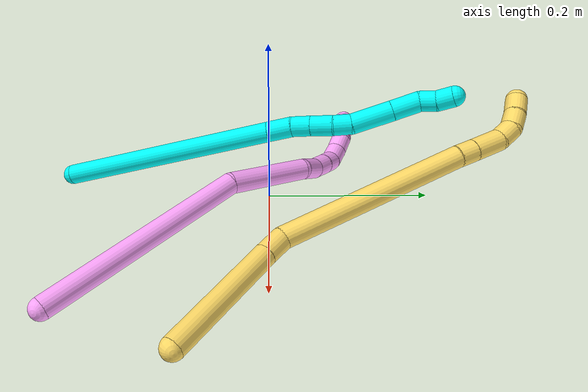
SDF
<sdf version="1.7">
 <world name="default">
  <model name="3">
   <static>0</static>
   <link name="3">
    <collision name="collision-cylinder-e_1_1_4">
     <pose>0.006702 0.009259 -0.135247 -3.07324 0.049395 -1.25138</pose>
     <geometry><cylinder><radius>0.0125</radius><length>0.271458</length></cylinder></geometry>
     <surface>
      <friction><ode><mu>1.16</mu><mu2>1.16</mu2><slip1>0</slip1><slip2>0</slip2></ode></friction>
      <contact><ode><kp>1e+06</kp><kd>1</kd><max_vel>0</max_vel><min_depth>0.001</min_depth></ode></contact>
     </surface>
    </collision>
    <visual name="visual-cylinder-e_1_1_4">
     <pose>0.006702 0.009259 -0.135247 -3.07324 0.049395 -1.25138</pose>
     <geometry><cylinder><radius>0.0125</radius><length>0.271458</length></cylinder></geometry>
     <material><ambient>0.003922 1 0.996078 1</ambient></material>
    </visual>
    <collision name="collision-cylinder-e_2_4_5">
     <pose>0.014075 0.019547 -0.285481 -3.07299 0.04471 -1.15496</pose>
     <geometry><cylinder><radius>0.0125</radius><length>0.030076</length></cylinder></geometry>
     <surface>
      <friction><ode><mu>1.16</mu><mu2>1.16</mu2><slip1>0</slip1><slip2>0</slip2></ode></friction>
      <contact><ode><kp>1e+06</kp><kd>1</kd><max_vel>0</max_vel><min_depth>0.001</min_depth></ode></contact>
     </surface>
    </collision>
    <visual name="visual-cylinder-e_2_4_5">
     <pose>0.014075 0.019547 -0.285481 -3.07299 0.04471 -1.15496</pose>
     <geometry><cylinder><radius>0.0125</radius><length>0.030076</length></cylinder></geometry>
     <material><ambient>0.003922 1 0.996078 1</ambient></material>
    </visual>
    <collision name="collision-cylinder-e_3_5_6">
     <pose>0.01336 0.021485 -0.312041 -3.06327 -0.118963 1.97774</pose>
     <geometry><cylinder><radius>0.0125</radius><length>0.02338</length></cylinder></geometry>
     <surface>
      <friction><ode><mu>1.16</mu><mu2>1.16</mu2><slip1>0</slip1><slip2>0</slip2></ode></friction>
      <contact><ode><kp>1e+06</kp><kd>1</kd><max_vel>0</max_vel><min_depth>0.001</min_depth></ode></contact>
     </surface>
    </collision>
    <visual name="visual-cylinder-e_3_5_6">
     <pose>0.01336 0.021485 -0.312041 -3.06327 -0.118963 1.97774</pose>
     <geometry><cylinder><radius>0.0125</radius><length>0.02338</length></cylinder></geometry>
     <material><ambient>0.003922 1 0.996078 1</ambient></material>
    </visual>
    <collision name="collision-cylinder-e_4_6_7">
     <pose>0.010038 0.023231 -0.336959 -3.0789 -0.143687 2.31985</pose>
     <geometry><cylinder><radius>0.0125</radius><length>0.027025</length></cylinder></geometry>
     <surface>
      <friction><ode><mu>1.16</mu><mu2>1.16</mu2><slip1>0</slip1><slip2>0</slip2></ode></friction>
      <contact><ode><kp>1e+06</kp><kd>1</kd><max_vel>0</max_vel><min_depth>0.001</min_depth></ode></contact>
     </surface>
    </collision>
    <visual name="visual-cylinder-e_4_6_7">
     <pose>0.010038 0.023231 -0.336959 -3.0789 -0.143687 2.31985</pose>
     <geometry><cylinder><radius>0.0125</radius><length>0.027025</length></cylinder></geometry>
     <material><ambient>0.003922 1 0.996078 1</ambient></material>
    </visual>
    <collision name="collision-cylinder-e_5_7_8">
     <pose>0.00718 0.026357 -0.361125 -2.93321 -0.083283 0.758316</pose>
     <geometry><cylinder><radius>0.0125</radius><length>0.022194</length></cylinder></geometry>
     <surface>
      <friction><ode><mu>1.16</mu><mu2>1.16</mu2><slip1>0</slip1><slip2>0</slip2></ode></friction>
      <contact><ode><kp>1e+06</kp><kd>1</kd><max_vel>0</max_vel><min_depth>0.001</min_depth></ode></contact>
     </surface>
    </collision>
    <visual name="visual-cylinder-e_5_7_8">
     <pose>0.00718 0.026357 -0.361125 -2.93321 -0.083283 0.758316</pose>
     <geometry><cylinder><radius>0.0125</radius><length>0.022194</length></cylinder></geometry>
     <material><ambient>0.003922 1 0.996078 1</ambient></material>
    </visual>
    <collision name="collision-cylinder-e_6_8_9">
     <pose>0.010291 0.0338 -0.396383 -2.93366 0.16015 -1.3112</pose>
     <geometry><cylinder><radius>0.0125</radius><length>0.050599</length></cylinder></geometry>
     <surface>
      <friction><ode><mu>1.16</mu><mu2>1.16</mu2><slip1>0</slip1><slip2>0</slip2></ode></friction>
      <contact><ode><kp>1e+06</kp><kd>1</kd><max_vel>0</max_vel><min_depth>0.001</min_depth></ode></contact>
     </surface>
    </collision>
    <visual name="visual-cylinder-e_6_8_9">
     <pose>0.010291 0.0338 -0.396383 -2.93366 0.16015 -1.3112</pose>
     <geometry><cylinder><radius>0.0125</radius><length>0.050599</length></cylinder></geometry>
     <material><ambient>0.003922 1 0.996078 1</ambient></material>
    </visual>
    <collision name="collision-cylinder-e_7_9_10">
     <pose>0.017281 0.042384 -0.437368 -2.93732 0.173117 -1.40508</pose>
     <geometry><cylinder><radius>0.0125</radius><length>0.034312</length></cylinder></geometry>
     <surface>
      <friction><ode><mu>1.16</mu><mu2>1.16</mu2><slip1>0</slip1><slip2>0</slip2></ode></friction>
      <contact><ode><kp>1e+06</kp><kd>1</kd><max_vel>0</max_vel><min_depth>0.001</min_depth></ode></contact>
     </surface>
    </collision>
    <visual name="visual-cylinder-e_7_9_10">
     <pose>0.017281 0.042384 -0.437368 -2.93732 0.173117 -1.40508</pose>
     <geometry><cylinder><radius>0.0125</radius><length>0.034312</length></cylinder></geometry>
     <material><ambient>0.003922 1 0.996078 1</ambient></material>
    </visual>
    <collision name="collision-cylinder-e_8_10_11">
     <pose>0.018685 0.045591 -0.463955 3.1195 -0.153231 -2.85574</pose>
     <geometry><cylinder><radius>0.0125</radius><length>0.02032</length></cylinder></geometry>
     <surface>
      <friction><ode><mu>1.16</mu><mu2>1.16</mu2><slip1>0</slip1><slip2>0</slip2></ode></friction>
      <contact><ode><kp>1e+06</kp><kd>1</kd><max_vel>0</max_vel><min_depth>0.001</min_depth></ode></contact>
     </surface>
    </collision>
    <visual name="visual-cylinder-e_8_10_11">
     <pose>0.018685 0.045591 -0.463955 3.1195 -0.153231 -2.85574</pose>
     <geometry><cylinder><radius>0.0125</radius><length>0.02032</length></cylinder></geometry>
     <material><ambient>0.003922 1 0.996078 1</ambient></material>
    </visual>
    <collision name="collision-cylinder-e_9_11_2">
     <pose>0.018121 0.044268 -0.484205 3.03421 0.09577 1.45636</pose>
     <geometry><cylinder><radius>0.0125</radius><length>0.020637</length></cylinder></geometry>
     <surface>
      <friction><ode><mu>1.16</mu><mu2>1.16</mu2><slip1>0</slip1><slip2>0</slip2></ode></friction>
      <contact><ode><kp>1e+06</kp><kd>1</kd><max_vel>0</max_vel><min_depth>0.001</min_depth></ode></contact>
     </surface>
    </collision>
    <visual name="visual-cylinder-e_9_11_2">
     <pose>0.018121 0.044268 -0.484205 3.03421 0.09577 1.45636</pose>
     <geometry><cylinder><radius>0.0125</radius><length>0.020637</length></cylinder></geometry>
     <material><ambient>0.003922 1 0.996078 1</ambient></material>
    </visual>
    <collision name="collision-sphere-2">
     <pose>0.019108 0.043167 -0.494417 0 -0 0</pose>
     <geometry><sphere><radius>0.0125</radius></sphere></geometry>
     <surface>
      <friction><ode><mu>1.16</mu><mu2>1.16</mu2><slip1>0</slip1><slip2>0</slip2></ode></friction>
      <contact><ode><kp>1e+06</kp><kd>1</kd><max_vel>0</max_vel><min_depth>0.001</min_depth></ode></contact>
     </surface>
    </collision>
    <visual name="visual-sphere-2">
     <pose>0.019108 0.043167 -0.494417 0 -0 0</pose>
     <geometry><sphere><radius>0.0125</radius></sphere></geometry>
     <material><ambient>0.003922 1 0.996078 1</ambient></material>
    </visual>
    <collision name="collision-sphere-11">
     <pose>0.017134 0.045369 -0.473993 0 -0 0</pose>
     <geometry><sphere><radius>0.0125</radius></sphere></geometry>
     <surface>
      <friction><ode><mu>1.16</mu><mu2>1.16</mu2><slip1>0</slip1><slip2>0</slip2></ode></friction>
      <contact><ode><kp>1e+06</kp><kd>1</kd><max_vel>0</max_vel><min_depth>0.001</min_depth></ode></contact>
     </surface>
    </collision>
    <visual name="visual-sphere-11">
     <pose>0.017134 0.045369 -0.473993 0 -0 0</pose>
     <geometry><sphere><radius>0.0125</radius></sphere></geometry>
     <material><ambient>0.003922 1 0.996078 1</ambient></material>
    </visual>
    <collision name="collision-sphere-10">
     <pose>0.020236 0.045813 -0.453916 0 -0 0</pose>
     <geometry><sphere><radius>0.0125</radius></sphere></geometry>
     <surface>
      <friction><ode><mu>1.16</mu><mu2>1.16</mu2><slip1>0</slip1><slip2>0</slip2></ode></friction>
      <contact><ode><kp>1e+06</kp><kd>1</kd><max_vel>0</max_vel><min_depth>0.001</min_depth></ode></contact>
     </surface>
    </collision>
    <visual name="visual-sphere-10">
     <pose>0.020236 0.045813 -0.453916 0 -0 0</pose>
     <geometry><sphere><radius>0.0125</radius></sphere></geometry>
     <material><ambient>0.003922 1 0.996078 1</ambient></material>
    </visual>
    <collision name="collision-sphere-9">
     <pose>0.014326 0.038956 -0.42082 0 -0 0</pose>
     <geometry><sphere><radius>0.0125</radius></sphere></geometry>
     <surface>
      <friction><ode><mu>1.16</mu><mu2>1.16</mu2><slip1>0</slip1><slip2>0</slip2></ode></friction>
      <contact><ode><kp>1e+06</kp><kd>1</kd><max_vel>0</max_vel><min_depth>0.001</min_depth></ode></contact>
     </surface>
    </collision>
    <visual name="visual-sphere-9">
     <pose>0.014326 0.038956 -0.42082 0 -0 0</pose>
     <geometry><sphere><radius>0.0125</radius></sphere></geometry>
     <material><ambient>0.003922 1 0.996078 1</ambient></material>
    </visual>
    <collision name="collision-sphere-4">
     <pose>0.013403 0.018517 -0.270494 0 -0 0</pose>
     <geometry><sphere><radius>0.0125</radius></sphere></geometry>
     <surface>
      <friction><ode><mu>1.16</mu><mu2>1.16</mu2><slip1>0</slip1><slip2>0</slip2></ode></friction>
      <contact><ode><kp>1e+06</kp><kd>1</kd><max_vel>0</max_vel><min_depth>0.001</min_depth></ode></contact>
     </surface>
    </collision>
    <visual name="visual-sphere-4">
     <pose>0.013403 0.018517 -0.270494 0 -0 0</pose>
     <geometry><sphere><radius>0.0125</radius></sphere></geometry>
     <material><ambient>0.003922 1 0.996078 1</ambient></material>
    </visual>
    <collision name="collision-sphere-1">
     <geometry><sphere><radius>0.0125</radius></sphere></geometry>
     <surface>
      <friction><ode><mu>1.16</mu><mu2>1.16</mu2><slip1>0</slip1><slip2>0</slip2></ode></friction>
      <contact><ode><kp>1e+06</kp><kd>1</kd><max_vel>0</max_vel><min_depth>0.001</min_depth></ode></contact>
     </surface>
    </collision>
    <visual name="visual-sphere-1">
     <geometry><sphere><radius>0.0125</radius></sphere></geometry>
     <material><ambient>0.003922 1 0.996078 1</ambient></material>
    </visual>
    <collision name="collision-sphere-8">
     <pose>0.006257 0.028644 -0.371945 0 -0 0</pose>
     <geometry><sphere><radius>0.0125</radius></sphere></geometry>
     <surface>
      <friction><ode><mu>1.16</mu><mu2>1.16</mu2><slip1>0</slip1><slip2>0</slip2></ode></friction>
      <contact><ode><kp>1e+06</kp><kd>1</kd><max_vel>0</max_vel><min_depth>0.001</min_depth></ode></contact>
     </surface>
    </collision>
    <visual name="visual-sphere-8">
     <pose>0.006257 0.028644 -0.371945 0 -0 0</pose>
     <geometry><sphere><radius>0.0125</radius></sphere></geometry>
     <material><ambient>0.003922 1 0.996078 1</ambient></material>
    </visual>
    <collision name="collision-sphere-5">
     <pose>0.014747 0.020577 -0.300469 0 -0 0</pose>
     <geometry><sphere><radius>0.0125</radius></sphere></geometry>
     <surface>
      <friction><ode><mu>1.16</mu><mu2>1.16</mu2><slip1>0</slip1><slip2>0</slip2></ode></friction>
      <contact><ode><kp>1e+06</kp><kd>1</kd><max_vel>0</max_vel><min_depth>0.001</min_depth></ode></contact>
     </surface>
    </collision>
    <visual name="visual-sphere-5">
     <pose>0.014747 0.020577 -0.300469 0 -0 0</pose>
     <geometry><sphere><radius>0.0125</radius></sphere></geometry>
     <material><ambient>0.003922 1 0.996078 1</ambient></material>
    </visual>
    <collision name="collision-sphere-6">
     <pose>0.011973 0.022393 -0.323613 0 -0 0</pose>
     <geometry><sphere><radius>0.0125</radius></sphere></geometry>
     <surface>
      <friction><ode><mu>1.16</mu><mu2>1.16</mu2><slip1>0</slip1><slip2>0</slip2></ode></friction>
      <contact><ode><kp>1e+06</kp><kd>1</kd><max_vel>0</max_vel><min_depth>0.001</min_depth></ode></contact>
     </surface>
    </collision>
    <visual name="visual-sphere-6">
     <pose>0.011973 0.022393 -0.323613 0 -0 0</pose>
     <geometry><sphere><radius>0.0125</radius></sphere></geometry>
     <material><ambient>0.003922 1 0.996078 1</ambient></material>
    </visual>
    <collision name="collision-sphere-7">
     <pose>0.008103 0.024069 -0.350306 0 -0 0</pose>
     <geometry><sphere><radius>0.0125</radius></sphere></geometry>
     <surface>
      <friction><ode><mu>1.16</mu><mu2>1.16</mu2><slip1>0</slip1><slip2>0</slip2></ode></friction>
      <contact><ode><kp>1e+06</kp><kd>1</kd><max_vel>0</max_vel><min_depth>0.001</min_depth></ode></contact>
     </surface>
    </collision>
    <visual name="visual-sphere-7">
     <pose>0.008103 0.024069 -0.350306 0 -0 0</pose>
     <geometry><sphere><radius>0.0125</radius></sphere></geometry>
     <material><ambient>0.003922 1 0.996078 1</ambient></material>
    </visual>
    <inertial>
     <pose>0.009706 0.019642 -0.2484 0 -0 0</pose>
     <mass>0.5</mass>
     <inertia>
      <ixx>-0.001074</ixx>
      <ixy>0</ixy>
      <ixz>0</ixz>
      <iyy>-0.002123</iyy>
      <iyz>0</iyz>
      <izz>-0.000242</izz>
     </inertia>
    </inertial>
   </link>
   <pose>-0.042472 -0.258655 0.011494 -2.17988 -1.09638 -2.8067</pose>
  </model>
  <model name="4">
   <static>0</static>
   <link name="4">
    <collision name="collision-cylinder-e_1_1_4">
     <pose>-0.049683 0.053261 -0.096248 -2.63617 -0.424229 1.39021</pose>
     <geometry><cylinder><radius>0.0125</radius><length>0.241402</length></cylinder></geometry>
     <surface>
      <friction><ode><mu>1.16</mu><mu2>1.16</mu2><slip1>0</slip1><slip2>0</slip2></ode></friction>
      <contact><ode><kp>1e+06</kp><kd>1</kd><max_vel>0</max_vel><min_depth>0.001</min_depth></ode></contact>
     </surface>
    </collision>
    <visual name="visual-cylinder-e_1_1_4">
     <pose>-0.049683 0.053261 -0.096248 -2.63617 -0.424229 1.39021</pose>
     <geometry><cylinder><radius>0.0125</radius><length>0.241402</length></cylinder></geometry>
     <material><ambient>1 0.65098 0.996078 1</ambient></material>
    </visual>
    <collision name="collision-cylinder-e_2_4_5">
     <pose>-0.104385 0.136502 -0.232962 -2.50394 -0.099343 0.298962</pose>
     <geometry><cylinder><radius>0.0125</radius><length>0.101224</length></cylinder></geometry>
     <surface>
      <friction><ode><mu>1.16</mu><mu2>1.16</mu2><slip1>0</slip1><slip2>0</slip2></ode></friction>
      <contact><ode><kp>1e+06</kp><kd>1</kd><max_vel>0</max_vel><min_depth>0.001</min_depth></ode></contact>
     </surface>
    </collision>
    <visual name="visual-cylinder-e_2_4_5">
     <pose>-0.104385 0.136502 -0.232962 -2.50394 -0.099343 0.298962</pose>
     <geometry><cylinder><radius>0.0125</radius><length>0.101224</length></cylinder></geometry>
     <material><ambient>1 0.65098 0.996078 1</ambient></material>
    </visual>
    <collision name="collision-cylinder-e_3_5_6">
     <pose>-0.10721 0.17012 -0.287557 -2.88964 0.149347 -1.06713</pose>
     <geometry><cylinder><radius>0.0125</radius><length>0.029508</length></cylinder></geometry>
     <surface>
      <friction><ode><mu>1.16</mu><mu2>1.16</mu2><slip1>0</slip1><slip2>0</slip2></ode></friction>
      <contact><ode><kp>1e+06</kp><kd>1</kd><max_vel>0</max_vel><min_depth>0.001</min_depth></ode></contact>
     </surface>
    </collision>
    <visual name="visual-cylinder-e_3_5_6">
     <pose>-0.10721 0.17012 -0.287557 -2.88964 0.149347 -1.06713</pose>
     <geometry><cylinder><radius>0.0125</radius><length>0.029508</length></cylinder></geometry>
     <material><ambient>1 0.65098 0.996078 1</ambient></material>
    </visual>
    <collision name="collision-cylinder-e_4_6_7">
     <pose>-0.105785 0.176816 -0.31298 -2.87714 -0.065777 0.484998</pose>
     <geometry><cylinder><radius>0.0125</radius><length>0.023452</length></cylinder></geometry>
     <surface>
      <friction><ode><mu>1.16</mu><mu2>1.16</mu2><slip1>0</slip1><slip2>0</slip2></ode></friction>
      <contact><ode><kp>1e+06</kp><kd>1</kd><max_vel>0</max_vel><min_depth>0.001</min_depth></ode></contact>
     </surface>
    </collision>
    <visual name="visual-cylinder-e_4_6_7">
     <pose>-0.105785 0.176816 -0.31298 -2.87714 -0.065777 0.484998</pose>
     <geometry><cylinder><radius>0.0125</radius><length>0.023452</length></cylinder></geometry>
     <material><ambient>1 0.65098 0.996078 1</ambient></material>
    </visual>
    <collision name="collision-cylinder-e_5_7_8">
     <pose>-0.106959 0.181962 -0.334429 -2.93886 -0.038896 0.377902</pose>
     <geometry><cylinder><radius>0.0125</radius><length>0.020751</length></cylinder></geometry>
     <surface>
      <friction><ode><mu>1.16</mu><mu2>1.16</mu2><slip1>0</slip1><slip2>0</slip2></ode></friction>
      <contact><ode><kp>1e+06</kp><kd>1</kd><max_vel>0</max_vel><min_depth>0.001</min_depth></ode></contact>
     </surface>
    </collision>
    <visual name="visual-cylinder-e_5_7_8">
     <pose>-0.106959 0.181962 -0.334429 -2.93886 -0.038896 0.377902</pose>
     <geometry><cylinder><radius>0.0125</radius><length>0.020751</length></cylinder></geometry>
     <material><ambient>1 0.65098 0.996078 1</ambient></material>
    </visual>
    <collision name="collision-cylinder-e_6_8_9">
     <pose>-0.112216 0.184476 -0.355096 -3.10102 -0.432203 2.95726</pose>
     <geometry><cylinder><radius>0.0125</radius><length>0.023172</length></cylinder></geometry>
     <surface>
      <friction><ode><mu>1.16</mu><mu2>1.16</mu2><slip1>0</slip1><slip2>0</slip2></ode></friction>
      <contact><ode><kp>1e+06</kp><kd>1</kd><max_vel>0</max_vel><min_depth>0.001</min_depth></ode></contact>
     </surface>
    </collision>
    <visual name="visual-cylinder-e_6_8_9">
     <pose>-0.112216 0.184476 -0.355096 -3.10102 -0.432203 2.95726</pose>
     <geometry><cylinder><radius>0.0125</radius><length>0.023172</length></cylinder></geometry>
     <material><ambient>1 0.65098 0.996078 1</ambient></material>
    </visual>
    <collision name="collision-cylinder-e_7_9_10">
     <pose>-0.12371 0.185407 -0.373286 -3.07602 -0.712059 2.96566</pose>
     <geometry><cylinder><radius>0.0125</radius><length>0.020328</length></cylinder></geometry>
     <surface>
      <friction><ode><mu>1.16</mu><mu2>1.16</mu2><slip1>0</slip1><slip2>0</slip2></ode></friction>
      <contact><ode><kp>1e+06</kp><kd>1</kd><max_vel>0</max_vel><min_depth>0.001</min_depth></ode></contact>
     </surface>
    </collision>
    <visual name="visual-cylinder-e_7_9_10">
     <pose>-0.12371 0.185407 -0.373286 -3.07602 -0.712059 2.96566</pose>
     <geometry><cylinder><radius>0.0125</radius><length>0.020328</length></cylinder></geometry>
     <material><ambient>1 0.65098 0.996078 1</ambient></material>
    </visual>
    <collision name="collision-cylinder-e_8_10_11">
     <pose>-0.134617 0.183935 -0.389866 2.92315 -0.437581 -2.22525</pose>
     <geometry><cylinder><radius>0.0125</radius><length>0.020136</length></cylinder></geometry>
     <surface>
      <friction><ode><mu>1.16</mu><mu2>1.16</mu2><slip1>0</slip1><slip2>0</slip2></ode></friction>
      <contact><ode><kp>1e+06</kp><kd>1</kd><max_vel>0</max_vel><min_depth>0.001</min_depth></ode></contact>
     </surface>
    </collision>
    <visual name="visual-cylinder-e_8_10_11">
     <pose>-0.134617 0.183935 -0.389866 2.92315 -0.437581 -2.22525</pose>
     <geometry><cylinder><radius>0.0125</radius><length>0.020136</length></cylinder></geometry>
     <material><ambient>1 0.65098 0.996078 1</ambient></material>
    </visual>
    <collision name="collision-cylinder-e_9_11_2">
     <pose>-0.143268 0.180058 -0.407569 2.92885 -0.453221 -2.27421</pose>
     <geometry><cylinder><radius>0.0125</radius><length>0.020028</length></cylinder></geometry>
     <surface>
      <friction><ode><mu>1.16</mu><mu2>1.16</mu2><slip1>0</slip1><slip2>0</slip2></ode></friction>
      <contact><ode><kp>1e+06</kp><kd>1</kd><max_vel>0</max_vel><min_depth>0.001</min_depth></ode></contact>
     </surface>
    </collision>
    <visual name="visual-cylinder-e_9_11_2">
     <pose>-0.143268 0.180058 -0.407569 2.92885 -0.453221 -2.27421</pose>
     <geometry><cylinder><radius>0.0125</radius><length>0.020028</length></cylinder></geometry>
     <material><ambient>1 0.65098 0.996078 1</ambient></material>
    </visual>
    <collision name="collision-sphere-2">
     <pose>-0.147653 0.178157 -0.416369 0 -0 0</pose>
     <geometry><sphere><radius>0.0125</radius></sphere></geometry>
     <surface>
      <friction><ode><mu>1.16</mu><mu2>1.16</mu2><slip1>0</slip1><slip2>0</slip2></ode></friction>
      <contact><ode><kp>1e+06</kp><kd>1</kd><max_vel>0</max_vel><min_depth>0.001</min_depth></ode></contact>
     </surface>
    </collision>
    <visual name="visual-sphere-2">
     <pose>-0.147653 0.178157 -0.416369 0 -0 0</pose>
     <geometry><sphere><radius>0.0125</radius></sphere></geometry>
     <material><ambient>1 0.65098 0.996078 1</ambient></material>
    </visual>
    <collision name="collision-sphere-11">
     <pose>-0.138883 0.181958 -0.398769 0 -0 0</pose>
     <geometry><sphere><radius>0.0125</radius></sphere></geometry>
     <surface>
      <friction><ode><mu>1.16</mu><mu2>1.16</mu2><slip1>0</slip1><slip2>0</slip2></ode></friction>
      <contact><ode><kp>1e+06</kp><kd>1</kd><max_vel>0</max_vel><min_depth>0.001</min_depth></ode></contact>
     </surface>
    </collision>
    <visual name="visual-sphere-11">
     <pose>-0.138883 0.181958 -0.398769 0 -0 0</pose>
     <geometry><sphere><radius>0.0125</radius></sphere></geometry>
     <material><ambient>1 0.65098 0.996078 1</ambient></material>
    </visual>
    <collision name="collision-sphere-10">
     <pose>-0.130351 0.185911 -0.380964 0 -0 0</pose>
     <geometry><sphere><radius>0.0125</radius></sphere></geometry>
     <surface>
      <friction><ode><mu>1.16</mu><mu2>1.16</mu2><slip1>0</slip1><slip2>0</slip2></ode></friction>
      <contact><ode><kp>1e+06</kp><kd>1</kd><max_vel>0</max_vel><min_depth>0.001</min_depth></ode></contact>
     </surface>
    </collision>
    <visual name="visual-sphere-10">
     <pose>-0.130351 0.185911 -0.380964 0 -0 0</pose>
     <geometry><sphere><radius>0.0125</radius></sphere></geometry>
     <material><ambient>1 0.65098 0.996078 1</ambient></material>
    </visual>
    <collision name="collision-sphere-9">
     <pose>-0.117069 0.184903 -0.365608 0 -0 0</pose>
     <geometry><sphere><radius>0.0125</radius></sphere></geometry>
     <surface>
      <friction><ode><mu>1.16</mu><mu2>1.16</mu2><slip1>0</slip1><slip2>0</slip2></ode></friction>
      <contact><ode><kp>1e+06</kp><kd>1</kd><max_vel>0</max_vel><min_depth>0.001</min_depth></ode></contact>
     </surface>
    </collision>
    <visual name="visual-sphere-9">
     <pose>-0.117069 0.184903 -0.365608 0 -0 0</pose>
     <geometry><sphere><radius>0.0125</radius></sphere></geometry>
     <material><ambient>1 0.65098 0.996078 1</ambient></material>
    </visual>
    <collision name="collision-sphere-4">
     <pose>-0.099366 0.106521 -0.192496 0 -0 0</pose>
     <geometry><sphere><radius>0.0125</radius></sphere></geometry>
     <surface>
      <friction><ode><mu>1.16</mu><mu2>1.16</mu2><slip1>0</slip1><slip2>0</slip2></ode></friction>
      <contact><ode><kp>1e+06</kp><kd>1</kd><max_vel>0</max_vel><min_depth>0.001</min_depth></ode></contact>
     </surface>
    </collision>
    <visual name="visual-sphere-4">
     <pose>-0.099366 0.106521 -0.192496 0 -0 0</pose>
     <geometry><sphere><radius>0.0125</radius></sphere></geometry>
     <material><ambient>1 0.65098 0.996078 1</ambient></material>
    </visual>
    <collision name="collision-sphere-1">
     <geometry><sphere><radius>0.0125</radius></sphere></geometry>
     <surface>
      <friction><ode><mu>1.16</mu><mu2>1.16</mu2><slip1>0</slip1><slip2>0</slip2></ode></friction>
      <contact><ode><kp>1e+06</kp><kd>1</kd><max_vel>0</max_vel><min_depth>0.001</min_depth></ode></contact>
     </surface>
    </collision>
    <visual name="visual-sphere-1">
     <geometry><sphere><radius>0.0125</radius></sphere></geometry>
     <material><ambient>1 0.65098 0.996078 1</ambient></material>
    </visual>
    <collision name="collision-sphere-8">
     <pose>-0.107363 0.184049 -0.344584 0 -0 0</pose>
     <geometry><sphere><radius>0.0125</radius></sphere></geometry>
     <surface>
      <friction><ode><mu>1.16</mu><mu2>1.16</mu2><slip1>0</slip1><slip2>0</slip2></ode></friction>
      <contact><ode><kp>1e+06</kp><kd>1</kd><max_vel>0</max_vel><min_depth>0.001</min_depth></ode></contact>
     </surface>
    </collision>
    <visual name="visual-sphere-8">
     <pose>-0.107363 0.184049 -0.344584 0 -0 0</pose>
     <geometry><sphere><radius>0.0125</radius></sphere></geometry>
     <material><ambient>1 0.65098 0.996078 1</ambient></material>
    </visual>
    <collision name="collision-sphere-5">
     <pose>-0.109405 0.166483 -0.273428 0 -0 0</pose>
     <geometry><sphere><radius>0.0125</radius></sphere></geometry>
     <surface>
      <friction><ode><mu>1.16</mu><mu2>1.16</mu2><slip1>0</slip1><slip2>0</slip2></ode></friction>
      <contact><ode><kp>1e+06</kp><kd>1</kd><max_vel>0</max_vel><min_depth>0.001</min_depth></ode></contact>
     </surface>
    </collision>
    <visual name="visual-sphere-5">
     <pose>-0.109405 0.166483 -0.273428 0 -0 0</pose>
     <geometry><sphere><radius>0.0125</radius></sphere></geometry>
     <material><ambient>1 0.65098 0.996078 1</ambient></material>
    </visual>
    <collision name="collision-sphere-6">
     <pose>-0.105014 0.173758 -0.301686 0 -0 0</pose>
     <geometry><sphere><radius>0.0125</radius></sphere></geometry>
     <surface>
      <friction><ode><mu>1.16</mu><mu2>1.16</mu2><slip1>0</slip1><slip2>0</slip2></ode></friction>
      <contact><ode><kp>1e+06</kp><kd>1</kd><max_vel>0</max_vel><min_depth>0.001</min_depth></ode></contact>
     </surface>
    </collision>
    <visual name="visual-sphere-6">
     <pose>-0.105014 0.173758 -0.301686 0 -0 0</pose>
     <geometry><sphere><radius>0.0125</radius></sphere></geometry>
     <material><ambient>1 0.65098 0.996078 1</ambient></material>
    </visual>
    <collision name="collision-sphere-7">
     <pose>-0.106556 0.179874 -0.324274 0 -0 0</pose>
     <geometry><sphere><radius>0.0125</radius></sphere></geometry>
     <surface>
      <friction><ode><mu>1.16</mu><mu2>1.16</mu2><slip1>0</slip1><slip2>0</slip2></ode></friction>
      <contact><ode><kp>1e+06</kp><kd>1</kd><max_vel>0</max_vel><min_depth>0.001</min_depth></ode></contact>
     </surface>
    </collision>
    <visual name="visual-sphere-7">
     <pose>-0.106556 0.179874 -0.324274 0 -0 0</pose>
     <geometry><sphere><radius>0.0125</radius></sphere></geometry>
     <material><ambient>1 0.65098 0.996078 1</ambient></material>
    </visual>
    <inertial>
     <pose>-0.082237 0.109941 -0.20282 0 -0 0</pose>
     <mass>0.5</mass>
     <inertia>
      <ixx>0.001351</ixx>
      <ixy>0</ixy>
      <ixz>0</ixz>
      <iyy>0.001076</iyy>
      <iyz>0</iyz>
      <izz>-0.000111</izz>
     </inertia>
    </inertial>
   </link>
   <pose>0.23563 -0.218516 0.011499 -0.270287 1.34842 -0.617559</pose>
  </model>
  <model name="5">
   <static>0</static>
   <link name="5">
    <collision name="collision-cylinder-e_1_1_4">
     <pose>-0.020638 0.051762 0.038194 -0.935095 -0.310443 0.157681</pose>
     <geometry><cylinder><radius>0.0125</radius><length>0.135116</length></cylinder></geometry>
     <surface>
      <friction><ode><mu>1.16</mu><mu2>1.16</mu2><slip1>0</slip1><slip2>0</slip2></ode></friction>
      <contact><ode><kp>1e+06</kp><kd>1</kd><max_vel>0</max_vel><min_depth>0.001</min_depth></ode></contact>
     </surface>
    </collision>
    <visual name="visual-cylinder-e_1_1_4">
     <pose>-0.020638 0.051762 0.038194 -0.935095 -0.310443 0.157681</pose>
     <geometry><cylinder><radius>0.0125</radius><length>0.135116</length></cylinder></geometry>
     <material><ambient>1 0.858824 0.4 1</ambient></material>
    </visual>
    <collision name="collision-cylinder-e_2_4_5">
     <pose>-0.045535 0.114435 0.083402 -0.999546 -0.317348 0.174301</pose>
     <geometry><cylinder><radius>0.0125</radius><length>0.027304</length></cylinder></geometry>
     <surface>
      <friction><ode><mu>1.16</mu><mu2>1.16</mu2><slip1>0</slip1><slip2>0</slip2></ode></friction>
      <contact><ode><kp>1e+06</kp><kd>1</kd><max_vel>0</max_vel><min_depth>0.001</min_depth></ode></contact>
     </surface>
    </collision>
    <visual name="visual-cylinder-e_2_4_5">
     <pose>-0.045535 0.114435 0.083402 -0.999546 -0.317348 0.174301</pose>
     <geometry><cylinder><radius>0.0125</radius><length>0.027304</length></cylinder></geometry>
     <material><ambient>1 0.858824 0.4 1</ambient></material>
    </visual>
    <collision name="collision-cylinder-e_3_5_6">
     <pose>-0.104243 0.217403 0.101834 -1.44737 -0.530779 0.471405</pose>
     <geometry><cylinder><radius>0.0125</radius><length>0.215123</length></cylinder></geometry>
     <surface>
      <friction><ode><mu>1.16</mu><mu2>1.16</mu2><slip1>0</slip1><slip2>0</slip2></ode></friction>
      <contact><ode><kp>1e+06</kp><kd>1</kd><max_vel>0</max_vel><min_depth>0.001</min_depth></ode></contact>
     </surface>
    </collision>
    <visual name="visual-cylinder-e_3_5_6">
     <pose>-0.104243 0.217403 0.101834 -1.44737 -0.530779 0.471405</pose>
     <geometry><cylinder><radius>0.0125</radius><length>0.215123</length></cylinder></geometry>
     <material><ambient>1 0.858824 0.4 1</ambient></material>
    </visual>
    <collision name="collision-cylinder-e_4_6_7">
     <pose>-0.164653 0.318101 0.114744 -1.40002 -0.597041 0.507217</pose>
     <geometry><cylinder><radius>0.0125</radius><length>0.021207</length></cylinder></geometry>
     <surface>
      <friction><ode><mu>1.16</mu><mu2>1.16</mu2><slip1>0</slip1><slip2>0</slip2></ode></friction>
      <contact><ode><kp>1e+06</kp><kd>1</kd><max_vel>0</max_vel><min_depth>0.001</min_depth></ode></contact>
     </surface>
    </collision>
    <visual name="visual-cylinder-e_4_6_7">
     <pose>-0.164653 0.318101 0.114744 -1.40002 -0.597041 0.507217</pose>
     <geometry><cylinder><radius>0.0125</radius><length>0.021207</length></cylinder></geometry>
     <material><ambient>1 0.858824 0.4 1</ambient></material>
    </visual>
    <collision name="collision-cylinder-e_5_7_8">
     <pose>-0.180295 0.340996 0.119123 -1.37087 -0.587316 0.484815</pose>
     <geometry><cylinder><radius>0.0125</radius><length>0.034941</length></cylinder></geometry>
     <surface>
      <friction><ode><mu>1.16</mu><mu2>1.16</mu2><slip1>0</slip1><slip2>0</slip2></ode></friction>
      <contact><ode><kp>1e+06</kp><kd>1</kd><max_vel>0</max_vel><min_depth>0.001</min_depth></ode></contact>
     </surface>
    </collision>
    <visual name="visual-cylinder-e_5_7_8">
     <pose>-0.180295 0.340996 0.119123 -1.37087 -0.587316 0.484815</pose>
     <geometry><cylinder><radius>0.0125</radius><length>0.034941</length></cylinder></geometry>
     <material><ambient>1 0.858824 0.4 1</ambient></material>
    </visual>
    <collision name="collision-cylinder-e_6_8_9">
     <pose>-0.193279 0.365202 0.12514 -1.26621 -0.306567 0.225798</pose>
     <geometry><cylinder><radius>0.0125</radius><length>0.021885</length></cylinder></geometry>
     <surface>
      <friction><ode><mu>1.16</mu><mu2>1.16</mu2><slip1>0</slip1><slip2>0</slip2></ode></friction>
      <contact><ode><kp>1e+06</kp><kd>1</kd><max_vel>0</max_vel><min_depth>0.001</min_depth></ode></contact>
     </surface>
    </collision>
    <visual name="visual-cylinder-e_6_8_9">
     <pose>-0.193279 0.365202 0.12514 -1.26621 -0.306567 0.225798</pose>
     <geometry><cylinder><radius>0.0125</radius><length>0.021885</length></cylinder></geometry>
     <material><ambient>1 0.858824 0.4 1</ambient></material>
    </visual>
    <collision name="collision-cylinder-e_7_9_10">
     <pose>-0.196037 0.384083 0.133966 -1.00286 0.051308 -0.028129</pose>
     <geometry><cylinder><radius>0.0125</radius><length>0.021212</length></cylinder></geometry>
     <surface>
      <friction><ode><mu>1.16</mu><mu2>1.16</mu2><slip1>0</slip1><slip2>0</slip2></ode></friction>
      <contact><ode><kp>1e+06</kp><kd>1</kd><max_vel>0</max_vel><min_depth>0.001</min_depth></ode></contact>
     </surface>
    </collision>
    <visual name="visual-cylinder-e_7_9_10">
     <pose>-0.196037 0.384083 0.133966 -1.00286 0.051308 -0.028129</pose>
     <geometry><cylinder><radius>0.0125</radius><length>0.021212</length></cylinder></geometry>
     <material><ambient>1 0.858824 0.4 1</ambient></material>
    </visual>
    <collision name="collision-cylinder-e_8_10_2">
     <pose>-0.194612 0.40174 0.147263 -0.854361 0.075991 -0.034605</pose>
     <geometry><cylinder><radius>0.0125</radius><length>0.023212</length></cylinder></geometry>
     <surface>
      <friction><ode><mu>1.16</mu><mu2>1.16</mu2><slip1>0</slip1><slip2>0</slip2></ode></friction>
      <contact><ode><kp>1e+06</kp><kd>1</kd><max_vel>0</max_vel><min_depth>0.001</min_depth></ode></contact>
     </surface>
    </collision>
    <visual name="visual-cylinder-e_8_10_2">
     <pose>-0.194612 0.40174 0.147263 -0.854361 0.075991 -0.034605</pose>
     <geometry><cylinder><radius>0.0125</radius><length>0.023212</length></cylinder></geometry>
     <material><ambient>1 0.858824 0.4 1</ambient></material>
    </visual>
    <collision name="collision-sphere-2">
     <pose>-0.193731 0.410468 0.154863 0 -0 0</pose>
     <geometry><sphere><radius>0.0125</radius></sphere></geometry>
     <surface>
      <friction><ode><mu>1.16</mu><mu2>1.16</mu2><slip1>0</slip1><slip2>0</slip2></ode></friction>
      <contact><ode><kp>1e+06</kp><kd>1</kd><max_vel>0</max_vel><min_depth>0.001</min_depth></ode></contact>
     </surface>
    </collision>
    <visual name="visual-sphere-2">
     <pose>-0.193731 0.410468 0.154863 0 -0 0</pose>
     <geometry><sphere><radius>0.0125</radius></sphere></geometry>
     <material><ambient>1 0.858824 0.4 1</ambient></material>
    </visual>
    <collision name="collision-sphere-10">
     <pose>-0.195493 0.393013 0.139664 0 -0 0</pose>
     <geometry><sphere><radius>0.0125</radius></sphere></geometry>
     <surface>
      <friction><ode><mu>1.16</mu><mu2>1.16</mu2><slip1>0</slip1><slip2>0</slip2></ode></friction>
      <contact><ode><kp>1e+06</kp><kd>1</kd><max_vel>0</max_vel><min_depth>0.001</min_depth></ode></contact>
     </surface>
    </collision>
    <visual name="visual-sphere-10">
     <pose>-0.195493 0.393013 0.139664 0 -0 0</pose>
     <geometry><sphere><radius>0.0125</radius></sphere></geometry>
     <material><ambient>1 0.858824 0.4 1</ambient></material>
    </visual>
    <collision name="collision-sphere-9">
     <pose>-0.196581 0.375154 0.128269 0 -0 0</pose>
     <geometry><sphere><radius>0.0125</radius></sphere></geometry>
     <surface>
      <friction><ode><mu>1.16</mu><mu2>1.16</mu2><slip1>0</slip1><slip2>0</slip2></ode></friction>
      <contact><ode><kp>1e+06</kp><kd>1</kd><max_vel>0</max_vel><min_depth>0.001</min_depth></ode></contact>
     </surface>
    </collision>
    <visual name="visual-sphere-9">
     <pose>-0.196581 0.375154 0.128269 0 -0 0</pose>
     <geometry><sphere><radius>0.0125</radius></sphere></geometry>
     <material><ambient>1 0.858824 0.4 1</ambient></material>
    </visual>
    <collision name="collision-sphere-4">
     <pose>-0.041275 0.103524 0.076389 0 -0 0</pose>
     <geometry><sphere><radius>0.0125</radius></sphere></geometry>
     <surface>
      <friction><ode><mu>1.16</mu><mu2>1.16</mu2><slip1>0</slip1><slip2>0</slip2></ode></friction>
      <contact><ode><kp>1e+06</kp><kd>1</kd><max_vel>0</max_vel><min_depth>0.001</min_depth></ode></contact>
     </surface>
    </collision>
    <visual name="visual-sphere-4">
     <pose>-0.041275 0.103524 0.076389 0 -0 0</pose>
     <geometry><sphere><radius>0.0125</radius></sphere></geometry>
     <material><ambient>1 0.858824 0.4 1</ambient></material>
    </visual>
    <collision name="collision-sphere-1">
     <geometry><sphere><radius>0.0125</radius></sphere></geometry>
     <surface>
      <friction><ode><mu>1.16</mu><mu2>1.16</mu2><slip1>0</slip1><slip2>0</slip2></ode></friction>
      <contact><ode><kp>1e+06</kp><kd>1</kd><max_vel>0</max_vel><min_depth>0.001</min_depth></ode></contact>
     </surface>
    </collision>
    <visual name="visual-sphere-1">
     <geometry><sphere><radius>0.0125</radius></sphere></geometry>
     <material><ambient>1 0.858824 0.4 1</ambient></material>
    </visual>
    <collision name="collision-sphere-8">
     <pose>-0.189976 0.35525 0.122011 0 -0 0</pose>
     <geometry><sphere><radius>0.0125</radius></sphere></geometry>
     <surface>
      <friction><ode><mu>1.16</mu><mu2>1.16</mu2><slip1>0</slip1><slip2>0</slip2></ode></friction>
      <contact><ode><kp>1e+06</kp><kd>1</kd><max_vel>0</max_vel><min_depth>0.001</min_depth></ode></contact>
     </surface>
    </collision>
    <visual name="visual-sphere-8">
     <pose>-0.189976 0.35525 0.122011 0 -0 0</pose>
     <geometry><sphere><radius>0.0125</radius></sphere></geometry>
     <material><ambient>1 0.858824 0.4 1</ambient></material>
    </visual>
    <collision name="collision-sphere-5">
     <pose>-0.049795 0.125346 0.090414 0 -0 0</pose>
     <geometry><sphere><radius>0.0125</radius></sphere></geometry>
     <surface>
      <friction><ode><mu>1.16</mu><mu2>1.16</mu2><slip1>0</slip1><slip2>0</slip2></ode></friction>
      <contact><ode><kp>1e+06</kp><kd>1</kd><max_vel>0</max_vel><min_depth>0.001</min_depth></ode></contact>
     </surface>
    </collision>
    <visual name="visual-sphere-5">
     <pose>-0.049795 0.125346 0.090414 0 -0 0</pose>
     <geometry><sphere><radius>0.0125</radius></sphere></geometry>
     <material><ambient>1 0.858824 0.4 1</ambient></material>
    </visual>
    <collision name="collision-sphere-6">
     <pose>-0.158692 0.309459 0.113254 0 -0 0</pose>
     <geometry><sphere><radius>0.0125</radius></sphere></geometry>
     <surface>
      <friction><ode><mu>1.16</mu><mu2>1.16</mu2><slip1>0</slip1><slip2>0</slip2></ode></friction>
      <contact><ode><kp>1e+06</kp><kd>1</kd><max_vel>0</max_vel><min_depth>0.001</min_depth></ode></contact>
     </surface>
    </collision>
    <visual name="visual-sphere-6">
     <pose>-0.158692 0.309459 0.113254 0 -0 0</pose>
     <geometry><sphere><radius>0.0125</radius></sphere></geometry>
     <material><ambient>1 0.858824 0.4 1</ambient></material>
    </visual>
    <collision name="collision-sphere-7">
     <pose>-0.170614 0.326743 0.116235 0 -0 0</pose>
     <geometry><sphere><radius>0.0125</radius></sphere></geometry>
     <surface>
      <friction><ode><mu>1.16</mu><mu2>1.16</mu2><slip1>0</slip1><slip2>0</slip2></ode></friction>
      <contact><ode><kp>1e+06</kp><kd>1</kd><max_vel>0</max_vel><min_depth>0.001</min_depth></ode></contact>
     </surface>
    </collision>
    <visual name="visual-sphere-7">
     <pose>-0.170614 0.326743 0.116235 0 -0 0</pose>
     <geometry><sphere><radius>0.0125</radius></sphere></geometry>
     <material><ambient>1 0.858824 0.4 1</ambient></material>
    </visual>
    <inertial>
     <pose>-0.098308 0.202025 0.089878 0 -0 0</pose>
     <mass>0.5</mass>
     <inertia>
      <ixx>0.001203</ixx>
      <ixy>0</ixy>
      <ixz>0</ixz>
      <iyy>0.000817</iyy>
      <iyz>0</iyz>
      <izz>-0.000385</izz>
     </inertia>
    </inertial>
   </link>
   <pose>0.29701 -0.084196 0.015672 1.9245 -0.716144 -1.60206</pose>
  </model>
 </world>
</sdf>
